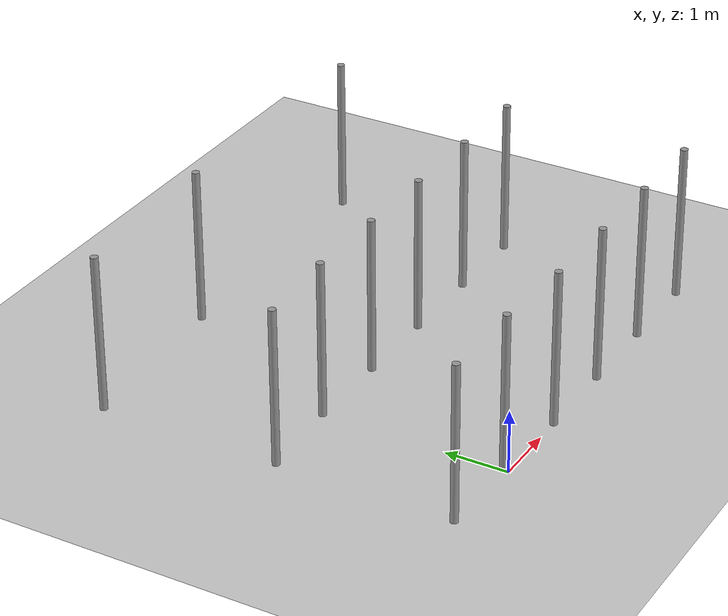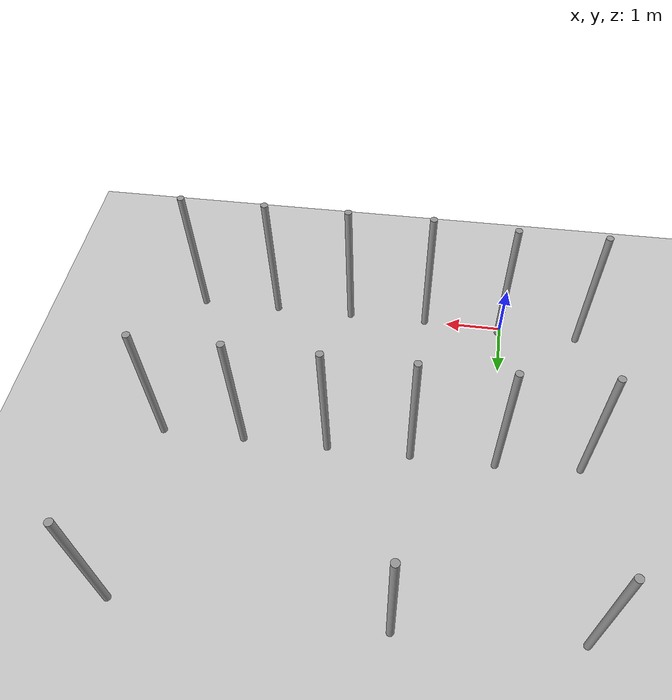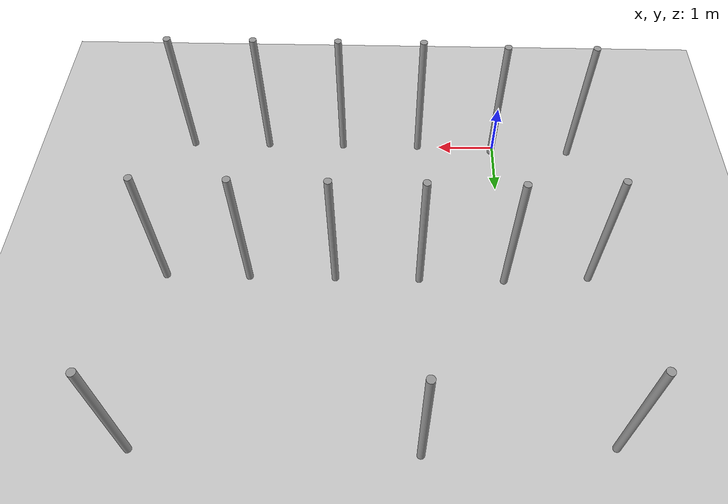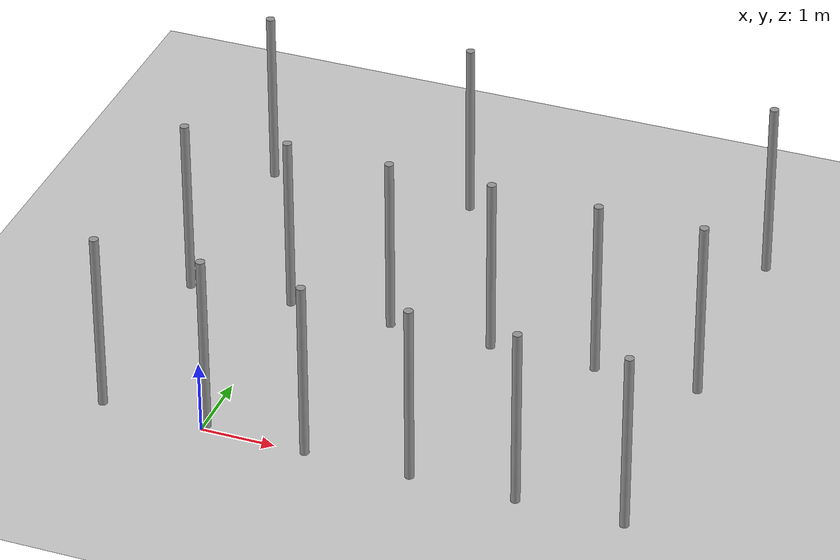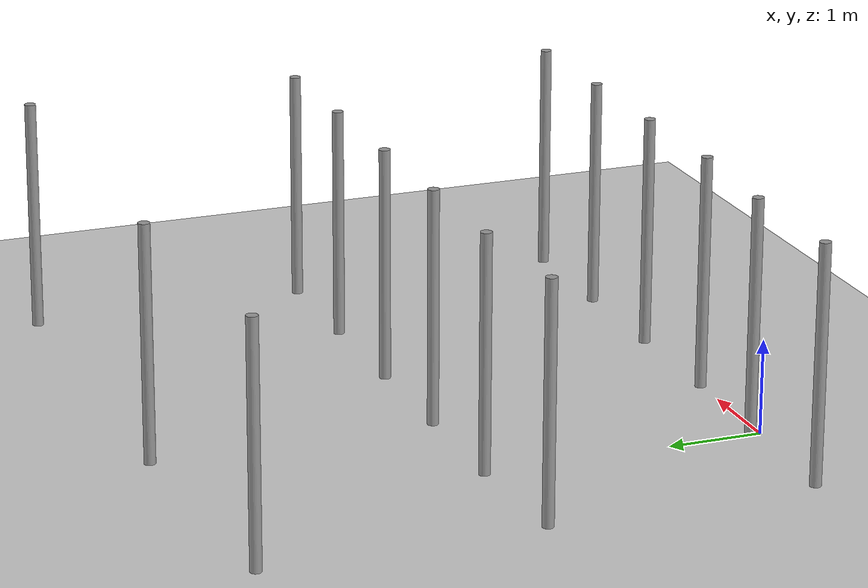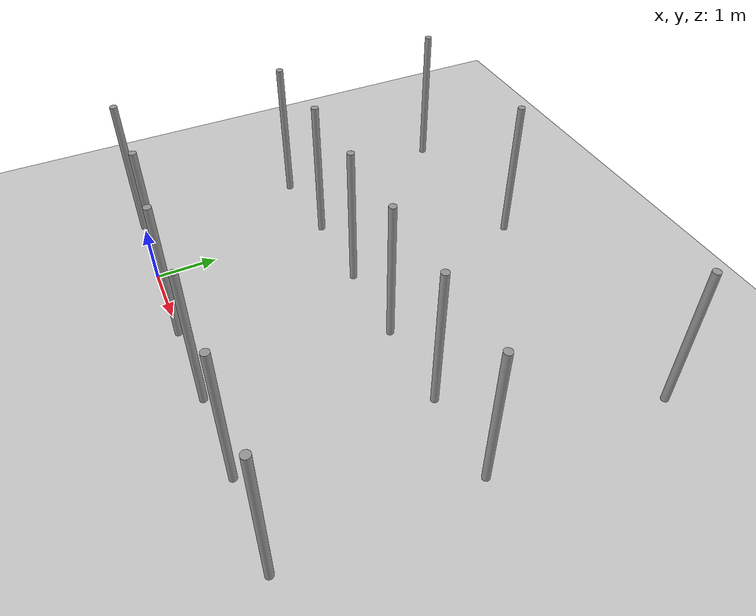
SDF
<sdf version="1.6">
 <world name="default">
  <model name="ground_plane">
   <static>1</static>
   <link name="link">
    <collision name="collision">
     <geometry><plane><normal>0 0 1</normal><size>100 100</size></plane></geometry>
     <surface><friction><ode><mu>100</mu><mu2>50</mu2></ode></friction></surface>
    </collision>
    <visual name="visual">
     <cast_shadows>0</cast_shadows>
     <geometry><plane><normal>0 0 1</normal><size>100 100</size></plane></geometry>
     <material>
      <script><uri>file://media/materials/scripts/gazebo.material</uri><name>Gazebo/Grey</name></script>
     </material>
    </visual>
   </link>
  </model>
  <model name="pole_8">
   <link name="link_0">
    <inertial>
     <mass>0.0364582</mass>
     <inertia>
      <ixx>0.00312124</ixx>
      <ixy>0</ixy>
      <ixz>0</ixz>
      <iyy>0.00312124</iyy>
      <iyz>0</iyz>
      <izz>0.00016615</izz>
     </inertia>
    </inertial>
    <visual name="visual">
     <geometry><cylinder><radius>0.06</radius><length>2.5</length></cylinder></geometry>
     <material>
      <lighting>1</lighting>
      <script><uri>file://media/materials/scripts/gazebo.material</uri><name>Gazebo/Grey</name></script>
      <ambient>0.3 0.3 0.3 1</ambient>
      <diffuse>0.7 0.7 0.7 1</diffuse>
      <specular>0.01 0.01 0.01 1</specular>
      <emissive>0 0 0 1</emissive>
      <shader type="vertex"><normal_map>__default__</normal_map></shader>
     </material>
    </visual>
    <collision name="collision">
     <geometry><cylinder><radius>0.06</radius><length>2.5</length></cylinder></geometry>
     <surface>
      <friction>
       <ode><mu>1</mu><mu2>1</mu2><fdir1>0 0 0</fdir1><slip1>0</slip1><slip2>0</slip2></ode>
       <torsional>
        <coefficient>1</coefficient>
        <patch_radius>0</patch_radius>
        <surface_radius>0</surface_radius>
        <use_patch_radius>1</use_patch_radius>
        <ode><slip>0</slip></ode>
       </torsional>
      </friction>
      <bounce><restitution_coefficient>0</restitution_coefficient><threshold>1e+06</threshold></bounce>
      <contact>
       <collide_without_contact>0</collide_without_contact>
       <collide_without_contact_bitmask>1</collide_without_contact_bitmask>
       <collide_bitmask>1</collide_bitmask>
       <ode>
        <soft_cfm>0</soft_cfm>
        <soft_erp>0.2</soft_erp>
        <kp>1e+13</kp>
        <kd>1</kd>
        <max_vel>0.01</max_vel>
        <min_depth>0</min_depth>
       </ode>
       <bullet>
        <split_impulse>1</split_impulse>
        <split_impulse_penetration_threshold>-0.01</split_impulse_penetration_threshold>
        <soft_cfm>0</soft_cfm>
        <soft_erp>0.2</soft_erp>
        <kp>1e+13</kp>
        <kd>1</kd>
       </bullet>
      </contact>
     </surface>
    </collision>
   </link>
   <static>0</static>
   <pose>1.40429 0.00203 1.25 -1e-06 1e-06 -0.024385</pose>
  </model>
  <model name="pole_9">
   <link name="link_0">
    <inertial>
     <mass>0.0364582</mass>
     <inertia>
      <ixx>0.00312124</ixx>
      <ixy>0</ixy>
      <ixz>0</ixz>
      <iyy>0.00312124</iyy>
      <iyz>0</iyz>
      <izz>0.00016615</izz>
     </inertia>
    </inertial>
    <visual name="visual">
     <geometry><cylinder><radius>0.06</radius><length>2.5</length></cylinder></geometry>
     <material>
      <lighting>1</lighting>
      <script><uri>file://media/materials/scripts/gazebo.material</uri><name>Gazebo/Grey</name></script>
      <ambient>0.3 0.3 0.3 1</ambient>
      <diffuse>0.7 0.7 0.7 1</diffuse>
      <specular>0.01 0.01 0.01 1</specular>
      <emissive>0 0 0 1</emissive>
      <shader type="vertex"><normal_map>__default__</normal_map></shader>
     </material>
    </visual>
    <collision name="collision">
     <geometry><cylinder><radius>0.06</radius><length>2.5</length></cylinder></geometry>
     <surface>
      <friction>
       <ode><mu>1</mu><mu2>1</mu2><fdir1>0 0 0</fdir1><slip1>0</slip1><slip2>0</slip2></ode>
       <torsional>
        <coefficient>1</coefficient>
        <patch_radius>0</patch_radius>
        <surface_radius>0</surface_radius>
        <use_patch_radius>1</use_patch_radius>
        <ode><slip>0</slip></ode>
       </torsional>
      </friction>
      <bounce><restitution_coefficient>0</restitution_coefficient><threshold>1e+06</threshold></bounce>
      <contact>
       <collide_without_contact>0</collide_without_contact>
       <collide_without_contact_bitmask>1</collide_without_contact_bitmask>
       <collide_bitmask>1</collide_bitmask>
       <ode>
        <soft_cfm>0</soft_cfm>
        <soft_erp>0.2</soft_erp>
        <kp>1e+13</kp>
        <kd>1</kd>
        <max_vel>0.01</max_vel>
        <min_depth>0</min_depth>
       </ode>
       <bullet>
        <split_impulse>1</split_impulse>
        <split_impulse_penetration_threshold>-0.01</split_impulse_penetration_threshold>
        <soft_cfm>0</soft_cfm>
        <soft_erp>0.2</soft_erp>
        <kp>1e+13</kp>
        <kd>1</kd>
       </bullet>
      </contact>
     </surface>
    </collision>
   </link>
   <static>0</static>
   <pose>2.80811 0.002207 1.25 0 1e-06 -0.043605</pose>
  </model>
  <model name="pole_10">
   <link name="link_0">
    <inertial>
     <mass>0.0364582</mass>
     <inertia>
      <ixx>0.00312124</ixx>
      <ixy>0</ixy>
      <ixz>0</ixz>
      <iyy>0.00312124</iyy>
      <iyz>0</iyz>
      <izz>0.00016615</izz>
     </inertia>
    </inertial>
    <visual name="visual">
     <geometry><cylinder><radius>0.06</radius><length>2.5</length></cylinder></geometry>
     <material>
      <lighting>1</lighting>
      <script><uri>file://media/materials/scripts/gazebo.material</uri><name>Gazebo/Grey</name></script>
      <ambient>0.3 0.3 0.3 1</ambient>
      <diffuse>0.7 0.7 0.7 1</diffuse>
      <specular>0.01 0.01 0.01 1</specular>
      <emissive>0 0 0 1</emissive>
      <shader type="vertex"><normal_map>__default__</normal_map></shader>
     </material>
    </visual>
    <collision name="collision">
     <geometry><cylinder><radius>0.06</radius><length>2.5</length></cylinder></geometry>
     <surface>
      <friction>
       <ode><mu>1</mu><mu2>1</mu2><fdir1>0 0 0</fdir1><slip1>0</slip1><slip2>0</slip2></ode>
       <torsional>
        <coefficient>1</coefficient>
        <patch_radius>0</patch_radius>
        <surface_radius>0</surface_radius>
        <use_patch_radius>1</use_patch_radius>
        <ode><slip>0</slip></ode>
       </torsional>
      </friction>
      <bounce><restitution_coefficient>0</restitution_coefficient><threshold>1e+06</threshold></bounce>
      <contact>
       <collide_without_contact>0</collide_without_contact>
       <collide_without_contact_bitmask>1</collide_without_contact_bitmask>
       <collide_bitmask>1</collide_bitmask>
       <ode>
        <soft_cfm>0</soft_cfm>
        <soft_erp>0.2</soft_erp>
        <kp>1e+13</kp>
        <kd>1</kd>
        <max_vel>0.01</max_vel>
        <min_depth>0</min_depth>
       </ode>
       <bullet>
        <split_impulse>1</split_impulse>
        <split_impulse_penetration_threshold>-0.01</split_impulse_penetration_threshold>
        <soft_cfm>0</soft_cfm>
        <soft_erp>0.2</soft_erp>
        <kp>1e+13</kp>
        <kd>1</kd>
       </bullet>
      </contact>
     </surface>
    </collision>
   </link>
   <static>0</static>
   <pose>4.20403 0.002088 1.24999 -1e-06 -0 -0.027374</pose>
  </model>
  <model name="pole_11">
   <link name="link_0">
    <inertial>
     <mass>0.0364582</mass>
     <inertia>
      <ixx>0.00312124</ixx>
      <ixy>0</ixy>
      <ixz>0</ixz>
      <iyy>0.00312124</iyy>
      <iyz>0</iyz>
      <izz>0.00016615</izz>
     </inertia>
    </inertial>
    <visual name="visual">
     <geometry><cylinder><radius>0.06</radius><length>2.5</length></cylinder></geometry>
     <material>
      <lighting>1</lighting>
      <script><uri>file://media/materials/scripts/gazebo.material</uri><name>Gazebo/Grey</name></script>
      <ambient>0.3 0.3 0.3 1</ambient>
      <diffuse>0.7 0.7 0.7 1</diffuse>
      <specular>0.01 0.01 0.01 1</specular>
      <emissive>0 0 0 1</emissive>
      <shader type="vertex"><normal_map>__default__</normal_map></shader>
     </material>
    </visual>
    <collision name="collision">
     <geometry><cylinder><radius>0.06</radius><length>2.5</length></cylinder></geometry>
     <surface>
      <friction>
       <ode><mu>1</mu><mu2>1</mu2><fdir1>0 0 0</fdir1><slip1>0</slip1><slip2>0</slip2></ode>
       <torsional>
        <coefficient>1</coefficient>
        <patch_radius>0</patch_radius>
        <surface_radius>0</surface_radius>
        <use_patch_radius>1</use_patch_radius>
        <ode><slip>0</slip></ode>
       </torsional>
      </friction>
      <bounce><restitution_coefficient>0</restitution_coefficient><threshold>1e+06</threshold></bounce>
      <contact>
       <collide_without_contact>0</collide_without_contact>
       <collide_without_contact_bitmask>1</collide_without_contact_bitmask>
       <collide_bitmask>1</collide_bitmask>
       <ode>
        <soft_cfm>0</soft_cfm>
        <soft_erp>0.2</soft_erp>
        <kp>1e+13</kp>
        <kd>1</kd>
        <max_vel>0.01</max_vel>
        <min_depth>0</min_depth>
       </ode>
       <bullet>
        <split_impulse>1</split_impulse>
        <split_impulse_penetration_threshold>-0.01</split_impulse_penetration_threshold>
        <soft_cfm>0</soft_cfm>
        <soft_erp>0.2</soft_erp>
        <kp>1e+13</kp>
        <kd>1</kd>
       </bullet>
      </contact>
     </surface>
    </collision>
   </link>
   <static>0</static>
   <pose>5.61632 0.001927 1.25 -0 2e-06 -0.029044</pose>
  </model>
  <model name="pole_11_clone">
   <link name="link_0">
    <inertial>
     <mass>0.0364582</mass>
     <inertia>
      <ixx>0.00312124</ixx>
      <ixy>0</ixy>
      <ixz>0</ixz>
      <iyy>0.00312124</iyy>
      <iyz>0</iyz>
      <izz>0.00016615</izz>
     </inertia>
    </inertial>
    <visual name="visual">
     <geometry><cylinder><radius>0.06</radius><length>2.5</length></cylinder></geometry>
     <material>
      <lighting>1</lighting>
      <script><uri>file://media/materials/scripts/gazebo.material</uri><name>Gazebo/Grey</name></script>
      <ambient>0.3 0.3 0.3 1</ambient>
      <diffuse>0.7 0.7 0.7 1</diffuse>
      <specular>0.01 0.01 0.01 1</specular>
      <emissive>0 0 0 1</emissive>
      <shader type="vertex"><normal_map>__default__</normal_map></shader>
     </material>
    </visual>
    <collision name="collision">
     <geometry><cylinder><radius>0.06</radius><length>2.5</length></cylinder></geometry>
     <surface>
      <friction>
       <ode><mu>1</mu><mu2>1</mu2><fdir1>0 0 0</fdir1><slip1>0</slip1><slip2>0</slip2></ode>
       <torsional>
        <coefficient>1</coefficient>
        <patch_radius>0</patch_radius>
        <surface_radius>0</surface_radius>
        <use_patch_radius>1</use_patch_radius>
        <ode><slip>0</slip></ode>
       </torsional>
      </friction>
      <bounce><restitution_coefficient>0</restitution_coefficient><threshold>1e+06</threshold></bounce>
      <contact>
       <collide_without_contact>0</collide_without_contact>
       <collide_without_contact_bitmask>1</collide_without_contact_bitmask>
       <collide_bitmask>1</collide_bitmask>
       <ode>
        <soft_cfm>0</soft_cfm>
        <soft_erp>0.2</soft_erp>
        <kp>1e+13</kp>
        <kd>1</kd>
        <max_vel>0.01</max_vel>
        <min_depth>0</min_depth>
       </ode>
       <bullet>
        <split_impulse>1</split_impulse>
        <split_impulse_penetration_threshold>-0.01</split_impulse_penetration_threshold>
        <soft_cfm>0</soft_cfm>
        <soft_erp>0.2</soft_erp>
        <kp>1e+13</kp>
        <kd>1</kd>
       </bullet>
      </contact>
     </surface>
    </collision>
   </link>
   <static>0</static>
   <pose>0.000791 2.98418 1.25 -1e-06 1e-06 -0.034317</pose>
  </model>
  <model name="pole_2">
   <link name="link_0">
    <inertial>
     <mass>0.0364582</mass>
     <inertia>
      <ixx>0.00312124</ixx>
      <ixy>0</ixy>
      <ixz>0</ixz>
      <iyy>0.00312124</iyy>
      <iyz>0</iyz>
      <izz>0.00016615</izz>
     </inertia>
    </inertial>
    <visual name="visual">
     <geometry><cylinder><radius>0.06</radius><length>2.5</length></cylinder></geometry>
     <material>
      <lighting>1</lighting>
      <script><uri>file://media/materials/scripts/gazebo.material</uri><name>Gazebo/Grey</name></script>
      <ambient>0.3 0.3 0.3 1</ambient>
      <diffuse>0.7 0.7 0.7 1</diffuse>
      <specular>0.01 0.01 0.01 1</specular>
      <emissive>0 0 0 1</emissive>
      <shader type="vertex"><normal_map>__default__</normal_map></shader>
     </material>
    </visual>
    <collision name="collision">
     <geometry><cylinder><radius>0.06</radius><length>2.5</length></cylinder></geometry>
     <surface>
      <friction>
       <ode><mu>1</mu><mu2>1</mu2><fdir1>0 0 0</fdir1><slip1>0</slip1><slip2>0</slip2></ode>
       <torsional>
        <coefficient>1</coefficient>
        <patch_radius>0</patch_radius>
        <surface_radius>0</surface_radius>
        <use_patch_radius>1</use_patch_radius>
        <ode><slip>0</slip></ode>
       </torsional>
      </friction>
      <bounce><restitution_coefficient>0</restitution_coefficient><threshold>1e+06</threshold></bounce>
      <contact>
       <collide_without_contact>0</collide_without_contact>
       <collide_without_contact_bitmask>1</collide_without_contact_bitmask>
       <collide_bitmask>1</collide_bitmask>
       <ode>
        <soft_cfm>0</soft_cfm>
        <soft_erp>0.2</soft_erp>
        <kp>1e+13</kp>
        <kd>1</kd>
        <max_vel>0.01</max_vel>
        <min_depth>0</min_depth>
       </ode>
       <bullet>
        <split_impulse>1</split_impulse>
        <split_impulse_penetration_threshold>-0.01</split_impulse_penetration_threshold>
        <soft_cfm>0</soft_cfm>
        <soft_erp>0.2</soft_erp>
        <kp>1e+13</kp>
        <kd>1</kd>
       </bullet>
      </contact>
     </surface>
    </collision>
   </link>
   <static>0</static>
   <pose>0.0343 0.094832 1.25 0 2e-06 0.039993</pose>
  </model>
  <model name="pole_3">
   <link name="link_0">
    <inertial>
     <mass>0.0364582</mass>
     <inertia>
      <ixx>0.00312124</ixx>
      <ixy>0</ixy>
      <ixz>0</ixz>
      <iyy>0.00312124</iyy>
      <iyz>0</iyz>
      <izz>0.00016615</izz>
     </inertia>
    </inertial>
    <visual name="visual">
     <geometry><cylinder><radius>0.06</radius><length>2.5</length></cylinder></geometry>
     <material>
      <lighting>1</lighting>
      <script><uri>file://media/materials/scripts/gazebo.material</uri><name>Gazebo/Grey</name></script>
      <ambient>0.3 0.3 0.3 1</ambient>
      <diffuse>0.7 0.7 0.7 1</diffuse>
      <specular>0.01 0.01 0.01 1</specular>
      <emissive>0 0 0 1</emissive>
      <shader type="vertex"><normal_map>__default__</normal_map></shader>
     </material>
    </visual>
    <collision name="collision">
     <geometry><cylinder><radius>0.06</radius><length>2.5</length></cylinder></geometry>
     <surface>
      <friction>
       <ode><mu>1</mu><mu2>1</mu2><fdir1>0 0 0</fdir1><slip1>0</slip1><slip2>0</slip2></ode>
       <torsional>
        <coefficient>1</coefficient>
        <patch_radius>0</patch_radius>
        <surface_radius>0</surface_radius>
        <use_patch_radius>1</use_patch_radius>
        <ode><slip>0</slip></ode>
       </torsional>
      </friction>
      <bounce><restitution_coefficient>0</restitution_coefficient><threshold>1e+06</threshold></bounce>
      <contact>
       <collide_without_contact>0</collide_without_contact>
       <collide_without_contact_bitmask>1</collide_without_contact_bitmask>
       <collide_bitmask>1</collide_bitmask>
       <ode>
        <soft_cfm>0</soft_cfm>
        <soft_erp>0.2</soft_erp>
        <kp>1e+13</kp>
        <kd>1</kd>
        <max_vel>0.01</max_vel>
        <min_depth>0</min_depth>
       </ode>
       <bullet>
        <split_impulse>1</split_impulse>
        <split_impulse_penetration_threshold>-0.01</split_impulse_penetration_threshold>
        <soft_cfm>0</soft_cfm>
        <soft_erp>0.2</soft_erp>
        <kp>1e+13</kp>
        <kd>1</kd>
       </bullet>
      </contact>
     </surface>
    </collision>
   </link>
   <static>0</static>
   <pose>1.4048 2.98179 1.25 -1e-06 4e-06 -0.019823</pose>
  </model>
  <model name="pole_5">
   <link name="link_0">
    <inertial>
     <mass>0.0364582</mass>
     <inertia>
      <ixx>0.00312124</ixx>
      <ixy>0</ixy>
      <ixz>0</ixz>
      <iyy>0.00312124</iyy>
      <iyz>0</iyz>
      <izz>0.00016615</izz>
     </inertia>
    </inertial>
    <visual name="visual">
     <geometry><cylinder><radius>0.06</radius><length>2.5</length></cylinder></geometry>
     <material>
      <lighting>1</lighting>
      <script><uri>file://media/materials/scripts/gazebo.material</uri><name>Gazebo/Grey</name></script>
      <ambient>0.3 0.3 0.3 1</ambient>
      <diffuse>0.7 0.7 0.7 1</diffuse>
      <specular>0.01 0.01 0.01 1</specular>
      <emissive>0 0 0 1</emissive>
      <shader type="vertex"><normal_map>__default__</normal_map></shader>
     </material>
    </visual>
    <collision name="collision">
     <geometry><cylinder><radius>0.06</radius><length>2.5</length></cylinder></geometry>
     <surface>
      <friction>
       <ode><mu>1</mu><mu2>1</mu2><fdir1>0 0 0</fdir1><slip1>0</slip1><slip2>0</slip2></ode>
       <torsional>
        <coefficient>1</coefficient>
        <patch_radius>0</patch_radius>
        <surface_radius>0</surface_radius>
        <use_patch_radius>1</use_patch_radius>
        <ode><slip>0</slip></ode>
       </torsional>
      </friction>
      <bounce><restitution_coefficient>0</restitution_coefficient><threshold>1e+06</threshold></bounce>
      <contact>
       <collide_without_contact>0</collide_without_contact>
       <collide_without_contact_bitmask>1</collide_without_contact_bitmask>
       <collide_bitmask>1</collide_bitmask>
       <ode>
        <soft_cfm>0</soft_cfm>
        <soft_erp>0.2</soft_erp>
        <kp>1e+13</kp>
        <kd>1</kd>
        <max_vel>0.01</max_vel>
        <min_depth>0</min_depth>
       </ode>
       <bullet>
        <split_impulse>1</split_impulse>
        <split_impulse_penetration_threshold>-0.01</split_impulse_penetration_threshold>
        <soft_cfm>0</soft_cfm>
        <soft_erp>0.2</soft_erp>
        <kp>1e+13</kp>
        <kd>1</kd>
       </bullet>
      </contact>
     </surface>
    </collision>
   </link>
   <static>0</static>
   <pose>2.79591 2.98151 1.25 -1e-06 1e-06 -0.021063</pose>
  </model>
  <model name="pole_6">
   <link name="link_0">
    <inertial>
     <mass>0.0364582</mass>
     <inertia>
      <ixx>0.00312124</ixx>
      <ixy>0</ixy>
      <ixz>0</ixz>
      <iyy>0.00312124</iyy>
      <iyz>0</iyz>
      <izz>0.00016615</izz>
     </inertia>
    </inertial>
    <visual name="visual">
     <geometry><cylinder><radius>0.06</radius><length>2.5</length></cylinder></geometry>
     <material>
      <lighting>1</lighting>
      <script><uri>file://media/materials/scripts/gazebo.material</uri><name>Gazebo/Grey</name></script>
      <ambient>0.3 0.3 0.3 1</ambient>
      <diffuse>0.7 0.7 0.7 1</diffuse>
      <specular>0.01 0.01 0.01 1</specular>
      <emissive>0 0 0 1</emissive>
      <shader type="vertex"><normal_map>__default__</normal_map></shader>
     </material>
    </visual>
    <collision name="collision">
     <geometry><cylinder><radius>0.06</radius><length>2.5</length></cylinder></geometry>
     <surface>
      <friction>
       <ode><mu>1</mu><mu2>1</mu2><fdir1>0 0 0</fdir1><slip1>0</slip1><slip2>0</slip2></ode>
       <torsional>
        <coefficient>1</coefficient>
        <patch_radius>0</patch_radius>
        <surface_radius>0</surface_radius>
        <use_patch_radius>1</use_patch_radius>
        <ode><slip>0</slip></ode>
       </torsional>
      </friction>
      <bounce><restitution_coefficient>0</restitution_coefficient><threshold>1e+06</threshold></bounce>
      <contact>
       <collide_without_contact>0</collide_without_contact>
       <collide_without_contact_bitmask>1</collide_without_contact_bitmask>
       <collide_bitmask>1</collide_bitmask>
       <ode>
        <soft_cfm>0</soft_cfm>
        <soft_erp>0.2</soft_erp>
        <kp>1e+13</kp>
        <kd>1</kd>
        <max_vel>0.01</max_vel>
        <min_depth>0</min_depth>
       </ode>
       <bullet>
        <split_impulse>1</split_impulse>
        <split_impulse_penetration_threshold>-0.01</split_impulse_penetration_threshold>
        <soft_cfm>0</soft_cfm>
        <soft_erp>0.2</soft_erp>
        <kp>1e+13</kp>
        <kd>1</kd>
       </bullet>
      </contact>
     </surface>
    </collision>
   </link>
   <static>0</static>
   <pose>4.22246 2.98157 1.25 -1e-06 -0 -0.017382</pose>
  </model>
  <model name="pole_7">
   <link name="link_0">
    <inertial>
     <mass>0.0364582</mass>
     <inertia>
      <ixx>0.00312124</ixx>
      <ixy>0</ixy>
      <ixz>0</ixz>
      <iyy>0.00312124</iyy>
      <iyz>0</iyz>
      <izz>0.00016615</izz>
     </inertia>
    </inertial>
    <visual name="visual">
     <geometry><cylinder><radius>0.06</radius><length>2.5</length></cylinder></geometry>
     <material>
      <lighting>1</lighting>
      <script><uri>file://media/materials/scripts/gazebo.material</uri><name>Gazebo/Grey</name></script>
      <ambient>0.3 0.3 0.3 1</ambient>
      <diffuse>0.7 0.7 0.7 1</diffuse>
      <specular>0.01 0.01 0.01 1</specular>
      <emissive>0 0 0 1</emissive>
      <shader type="vertex"><normal_map>__default__</normal_map></shader>
     </material>
    </visual>
    <collision name="collision">
     <geometry><cylinder><radius>0.06</radius><length>2.5</length></cylinder></geometry>
     <surface>
      <friction>
       <ode><mu>1</mu><mu2>1</mu2><fdir1>0 0 0</fdir1><slip1>0</slip1><slip2>0</slip2></ode>
       <torsional>
        <coefficient>1</coefficient>
        <patch_radius>0</patch_radius>
        <surface_radius>0</surface_radius>
        <use_patch_radius>1</use_patch_radius>
        <ode><slip>0</slip></ode>
       </torsional>
      </friction>
      <bounce><restitution_coefficient>0</restitution_coefficient><threshold>1e+06</threshold></bounce>
      <contact>
       <collide_without_contact>0</collide_without_contact>
       <collide_without_contact_bitmask>1</collide_without_contact_bitmask>
       <collide_bitmask>1</collide_bitmask>
       <ode>
        <soft_cfm>0</soft_cfm>
        <soft_erp>0.2</soft_erp>
        <kp>1e+13</kp>
        <kd>1</kd>
        <max_vel>0.01</max_vel>
        <min_depth>0</min_depth>
       </ode>
       <bullet>
        <split_impulse>1</split_impulse>
        <split_impulse_penetration_threshold>-0.01</split_impulse_penetration_threshold>
        <soft_cfm>0</soft_cfm>
        <soft_erp>0.2</soft_erp>
        <kp>1e+13</kp>
        <kd>1</kd>
       </bullet>
      </contact>
     </surface>
    </collision>
   </link>
   <static>0</static>
   <pose>5.60742 2.98154 1.24999 -1e-06 -1e-06 -0.019394</pose>
  </model>
  <model name="pole_12">
   <link name="link_0">
    <inertial>
     <mass>0.0364582</mass>
     <inertia>
      <ixx>0.00312124</ixx>
      <ixy>0</ixy>
      <ixz>0</ixz>
      <iyy>0.00312124</iyy>
      <iyz>0</iyz>
      <izz>0.00016615</izz>
     </inertia>
    </inertial>
    <visual name="visual">
     <geometry><cylinder><radius>0.06</radius><length>2.5</length></cylinder></geometry>
     <material>
      <lighting>1</lighting>
      <script><uri>file://media/materials/scripts/gazebo.material</uri><name>Gazebo/Grey</name></script>
      <ambient>0.3 0.3 0.3 1</ambient>
      <diffuse>0.7 0.7 0.7 1</diffuse>
      <specular>0.01 0.01 0.01 1</specular>
      <emissive>0 0 0 1</emissive>
      <shader type="vertex"><normal_map>__default__</normal_map></shader>
     </material>
    </visual>
    <collision name="collision">
     <geometry><cylinder><radius>0.06</radius><length>2.5</length></cylinder></geometry>
     <surface>
      <friction>
       <ode><mu>1</mu><mu2>1</mu2><fdir1>0 0 0</fdir1><slip1>0</slip1><slip2>0</slip2></ode>
       <torsional>
        <coefficient>1</coefficient>
        <patch_radius>0</patch_radius>
        <surface_radius>0</surface_radius>
        <use_patch_radius>1</use_patch_radius>
        <ode><slip>0</slip></ode>
       </torsional>
      </friction>
      <bounce><restitution_coefficient>0</restitution_coefficient><threshold>1e+06</threshold></bounce>
      <contact>
       <collide_without_contact>0</collide_without_contact>
       <collide_without_contact_bitmask>1</collide_without_contact_bitmask>
       <collide_bitmask>1</collide_bitmask>
       <ode>
        <soft_cfm>0</soft_cfm>
        <soft_erp>0.2</soft_erp>
        <kp>1e+13</kp>
        <kd>1</kd>
        <max_vel>0.01</max_vel>
        <min_depth>0</min_depth>
       </ode>
       <bullet>
        <split_impulse>1</split_impulse>
        <split_impulse_penetration_threshold>-0.01</split_impulse_penetration_threshold>
        <soft_cfm>0</soft_cfm>
        <soft_erp>0.2</soft_erp>
        <kp>1e+13</kp>
        <kd>1</kd>
       </bullet>
      </contact>
     </surface>
    </collision>
   </link>
   <static>0</static>
   <pose>1.41368 5.96157 1.24999 -0 1e-06 -0.016428</pose>
  </model>
  <model name="pole_15">
   <link name="link_0">
    <inertial>
     <mass>0.0364582</mass>
     <inertia>
      <ixx>0.00312124</ixx>
      <ixy>0</ixy>
      <ixz>0</ixz>
      <iyy>0.00312124</iyy>
      <iyz>0</iyz>
      <izz>0.00016615</izz>
     </inertia>
    </inertial>
    <visual name="visual">
     <geometry><cylinder><radius>0.06</radius><length>2.5</length></cylinder></geometry>
     <material>
      <lighting>1</lighting>
      <script><uri>file://media/materials/scripts/gazebo.material</uri><name>Gazebo/Grey</name></script>
      <ambient>0.3 0.3 0.3 1</ambient>
      <diffuse>0.7 0.7 0.7 1</diffuse>
      <specular>0.01 0.01 0.01 1</specular>
      <emissive>0 0 0 1</emissive>
      <shader type="vertex"><normal_map>__default__</normal_map></shader>
     </material>
    </visual>
    <collision name="collision">
     <geometry><cylinder><radius>0.06</radius><length>2.5</length></cylinder></geometry>
     <surface>
      <friction>
       <ode><mu>1</mu><mu2>1</mu2><fdir1>0 0 0</fdir1><slip1>0</slip1><slip2>0</slip2></ode>
       <torsional>
        <coefficient>1</coefficient>
        <patch_radius>0</patch_radius>
        <surface_radius>0</surface_radius>
        <use_patch_radius>1</use_patch_radius>
        <ode><slip>0</slip></ode>
       </torsional>
      </friction>
      <bounce><restitution_coefficient>0</restitution_coefficient><threshold>1e+06</threshold></bounce>
      <contact>
       <collide_without_contact>0</collide_without_contact>
       <collide_without_contact_bitmask>1</collide_without_contact_bitmask>
       <collide_bitmask>1</collide_bitmask>
       <ode>
        <soft_cfm>0</soft_cfm>
        <soft_erp>0.2</soft_erp>
        <kp>1e+13</kp>
        <kd>1</kd>
        <max_vel>0.01</max_vel>
        <min_depth>0</min_depth>
       </ode>
       <bullet>
        <split_impulse>1</split_impulse>
        <split_impulse_penetration_threshold>-0.01</split_impulse_penetration_threshold>
        <soft_cfm>0</soft_cfm>
        <soft_erp>0.2</soft_erp>
        <kp>1e+13</kp>
        <kd>1</kd>
       </bullet>
      </contact>
     </surface>
    </collision>
   </link>
   <static>0</static>
   <pose>5.62356 5.96155 1.24999 -1e-06 -0 -0.014744</pose>
  </model>
  <model name="pole_2_clone">
   <link name="link_0">
    <inertial>
     <mass>0.0364582</mass>
     <inertia>
      <ixx>0.00312124</ixx>
      <ixy>0</ixy>
      <ixz>0</ixz>
      <iyy>0.00312124</iyy>
      <iyz>0</iyz>
      <izz>0.00016615</izz>
     </inertia>
    </inertial>
    <visual name="visual">
     <geometry><cylinder><radius>0.06</radius><length>2.5</length></cylinder></geometry>
     <material>
      <lighting>1</lighting>
      <script><uri>file://media/materials/scripts/gazebo.material</uri><name>Gazebo/Grey</name></script>
      <ambient>0.3 0.3 0.3 1</ambient>
      <diffuse>0.7 0.7 0.7 1</diffuse>
      <specular>0.01 0.01 0.01 1</specular>
      <emissive>0 0 0 1</emissive>
      <shader type="vertex"><normal_map>__default__</normal_map></shader>
     </material>
    </visual>
    <collision name="collision">
     <geometry><cylinder><radius>0.06</radius><length>2.5</length></cylinder></geometry>
     <surface>
      <friction>
       <ode><mu>1</mu><mu2>1</mu2><fdir1>0 0 0</fdir1><slip1>0</slip1><slip2>0</slip2></ode>
       <torsional>
        <coefficient>1</coefficient>
        <patch_radius>0</patch_radius>
        <surface_radius>0</surface_radius>
        <use_patch_radius>1</use_patch_radius>
        <ode><slip>0</slip></ode>
       </torsional>
      </friction>
      <bounce><restitution_coefficient>0</restitution_coefficient><threshold>1e+06</threshold></bounce>
      <contact>
       <collide_without_contact>0</collide_without_contact>
       <collide_without_contact_bitmask>1</collide_without_contact_bitmask>
       <collide_bitmask>1</collide_bitmask>
       <ode>
        <soft_cfm>0</soft_cfm>
        <soft_erp>0.2</soft_erp>
        <kp>1e+13</kp>
        <kd>1</kd>
        <max_vel>0.01</max_vel>
        <min_depth>0</min_depth>
       </ode>
       <bullet>
        <split_impulse>1</split_impulse>
        <split_impulse_penetration_threshold>-0.01</split_impulse_penetration_threshold>
        <soft_cfm>0</soft_cfm>
        <soft_erp>0.2</soft_erp>
        <kp>1e+13</kp>
        <kd>1</kd>
       </bullet>
      </contact>
     </surface>
    </collision>
   </link>
   <static>0</static>
   <pose>-1.39988 0.092535 1.24999 0 -0 0.038892</pose>
  </model>
  <model name="pole_2_clone_0">
   <link name="link_0">
    <inertial>
     <mass>0.0364582</mass>
     <inertia>
      <ixx>0.00312124</ixx>
      <ixy>0</ixy>
      <ixz>0</ixz>
      <iyy>0.00312124</iyy>
      <iyz>0</iyz>
      <izz>0.00016615</izz>
     </inertia>
    </inertial>
    <visual name="visual">
     <geometry><cylinder><radius>0.06</radius><length>2.5</length></cylinder></geometry>
     <material>
      <lighting>1</lighting>
      <script><uri>file://media/materials/scripts/gazebo.material</uri><name>Gazebo/Grey</name></script>
      <ambient>0.3 0.3 0.3 1</ambient>
      <diffuse>0.7 0.7 0.7 1</diffuse>
      <specular>0.01 0.01 0.01 1</specular>
      <emissive>0 0 0 1</emissive>
      <shader type="vertex"><normal_map>__default__</normal_map></shader>
     </material>
    </visual>
    <collision name="collision">
     <geometry><cylinder><radius>0.06</radius><length>2.5</length></cylinder></geometry>
     <surface>
      <friction>
       <ode><mu>1</mu><mu2>1</mu2><fdir1>0 0 0</fdir1><slip1>0</slip1><slip2>0</slip2></ode>
       <torsional>
        <coefficient>1</coefficient>
        <patch_radius>0</patch_radius>
        <surface_radius>0</surface_radius>
        <use_patch_radius>1</use_patch_radius>
        <ode><slip>0</slip></ode>
       </torsional>
      </friction>
      <bounce><restitution_coefficient>0</restitution_coefficient><threshold>1e+06</threshold></bounce>
      <contact>
       <collide_without_contact>0</collide_without_contact>
       <collide_without_contact_bitmask>1</collide_without_contact_bitmask>
       <collide_bitmask>1</collide_bitmask>
       <ode>
        <soft_cfm>0</soft_cfm>
        <soft_erp>0.2</soft_erp>
        <kp>1e+13</kp>
        <kd>1</kd>
        <max_vel>0.01</max_vel>
        <min_depth>0</min_depth>
       </ode>
       <bullet>
        <split_impulse>1</split_impulse>
        <split_impulse_penetration_threshold>-0.01</split_impulse_penetration_threshold>
        <soft_cfm>0</soft_cfm>
        <soft_erp>0.2</soft_erp>
        <kp>1e+13</kp>
        <kd>1</kd>
       </bullet>
      </contact>
     </surface>
    </collision>
   </link>
   <static>0</static>
   <pose>-1.39989 2.90075 1.24999 -0 -1e-06 0.038604</pose>
  </model>
  <model name="pole_2_clone_1">
   <link name="link_0">
    <inertial>
     <mass>0.0364582</mass>
     <inertia>
      <ixx>0.00312124</ixx>
      <ixy>0</ixy>
      <ixz>0</ixz>
      <iyy>0.00312124</iyy>
      <iyz>0</iyz>
      <izz>0.00016615</izz>
     </inertia>
    </inertial>
    <visual name="visual">
     <geometry><cylinder><radius>0.06</radius><length>2.5</length></cylinder></geometry>
     <material>
      <lighting>1</lighting>
      <script><uri>file://media/materials/scripts/gazebo.material</uri><name>Gazebo/Grey</name></script>
      <ambient>0.3 0.3 0.3 1</ambient>
      <diffuse>0.7 0.7 0.7 1</diffuse>
      <specular>0.01 0.01 0.01 1</specular>
      <emissive>0 0 0 1</emissive>
      <shader type="vertex"><normal_map>__default__</normal_map></shader>
     </material>
    </visual>
    <collision name="collision">
     <geometry><cylinder><radius>0.06</radius><length>2.5</length></cylinder></geometry>
     <surface>
      <friction>
       <ode><mu>1</mu><mu2>1</mu2><fdir1>0 0 0</fdir1><slip1>0</slip1><slip2>0</slip2></ode>
       <torsional>
        <coefficient>1</coefficient>
        <patch_radius>0</patch_radius>
        <surface_radius>0</surface_radius>
        <use_patch_radius>1</use_patch_radius>
        <ode><slip>0</slip></ode>
       </torsional>
      </friction>
      <bounce><restitution_coefficient>0</restitution_coefficient><threshold>1e+06</threshold></bounce>
      <contact>
       <collide_without_contact>0</collide_without_contact>
       <collide_without_contact_bitmask>1</collide_without_contact_bitmask>
       <collide_bitmask>1</collide_bitmask>
       <ode>
        <soft_cfm>0</soft_cfm>
        <soft_erp>0.2</soft_erp>
        <kp>1e+13</kp>
        <kd>1</kd>
        <max_vel>0.01</max_vel>
        <min_depth>0</min_depth>
       </ode>
       <bullet>
        <split_impulse>1</split_impulse>
        <split_impulse_penetration_threshold>-0.01</split_impulse_penetration_threshold>
        <soft_cfm>0</soft_cfm>
        <soft_erp>0.2</soft_erp>
        <kp>1e+13</kp>
        <kd>1</kd>
       </bullet>
      </contact>
     </surface>
    </collision>
   </link>
   <static>0</static>
   <pose>-1.3999 5.80082 1.25 -1e-06 1e-06 0.039386</pose>
  </model>
 </world>
</sdf>
